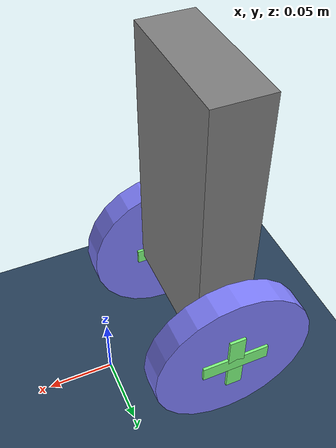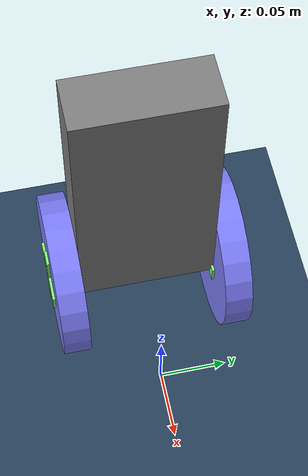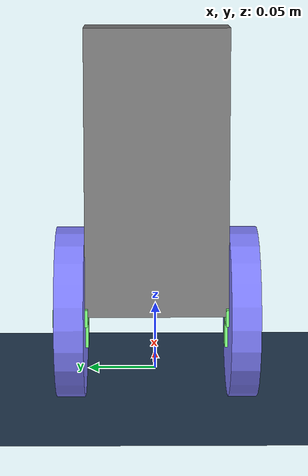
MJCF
<mujoco>
  <compiler autolimits="true"/>

  <asset>
    <texture name="grid" type="2d" builtin="checker" width="512" height="512" rgb1=".1 .2 .3" rgb2=".2 .3 .4"/>
    <material name="grid" texture="grid" texrepeat="1 1" texuniform="true" reflectance=".2"/>
    <mesh name="chasis" scale=".001 .005 .01"
      vertex=" 10   10   10
              -10  10  10
               10  -10   10
               10  10  -10
               10 -10  -10
              -10   10 -10
              -10 -10  10
              0  -10 -10
              "/>
  </asset>

  <default>
    <joint damping=".03" actuatorfrcrange="-0.5 0.5"/>
    <default class="wheel">
      <geom type="cylinder" size=".06 .01" rgba=".5 .5 1 1" friction="1.0 0.05 0.005"/>
    </default>
    <default class="decor">
      <site type="box" rgba=".5 1 .5 1"/>
    </default>
  </default>

  <worldbody>
    <geom type="plane" size="30 30 .01" material="grid"/>
    <body name="car" pos="0 0 .06" euler="0 0 0">
      <freejoint/>
      <light name="top light" pos="0 0 2" mode="trackcom" diffuse=".5 .5 .5"/>
      <geom name="chasis" pos="-0.07 0 0.1" type="box" size="0.02 0.05 0.1" mass="0.1"/>
      <site name="accel_site" pos="-0.07 0 0.05" type="sphere" size="0.01"/>
      <site name="gyro_site" pos="-0.07 0 0.05" type="sphere" size="0.01"/>
      <body name="left wheel" pos="-.07 .06 0" zaxis="0 1 0">
        <joint name="left"/>
        <geom class="wheel"/>
        <site class="decor" size=".006 .025 .012"/>
        <site class="decor" size=".025 .006 .012"/>
      </body>
      <body name="right wheel" pos="-.07 -.06 0" zaxis="0 1 0">
        <joint name="right"/>
        <geom class="wheel"/>
        <site class="decor" size=".006 .025 .012"/>
        <site class="decor" size=".025 .006 .012"/>
      </body>
    </body>
  </worldbody>

  <tendon>
    <fixed name="forward">
      <joint joint="left" coef=".5"/>
      <joint joint="right" coef=".5"/>
    </fixed>
  </tendon>

  <actuator>
    <motor name="forward" tendon="forward" ctrlrange="-1 1"/>
  </actuator>

  <sensor>
        <accelerometer name="chassis_accel" site="accel_site"/>
        <gyro name="chassis_gyro" site="gyro_site"/>
  </sensor>
</mujoco>
